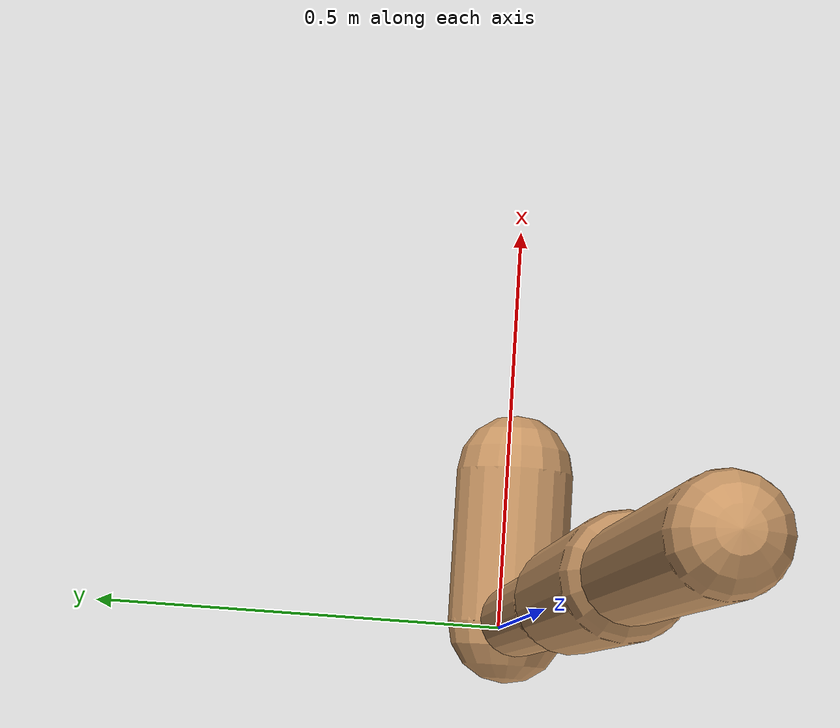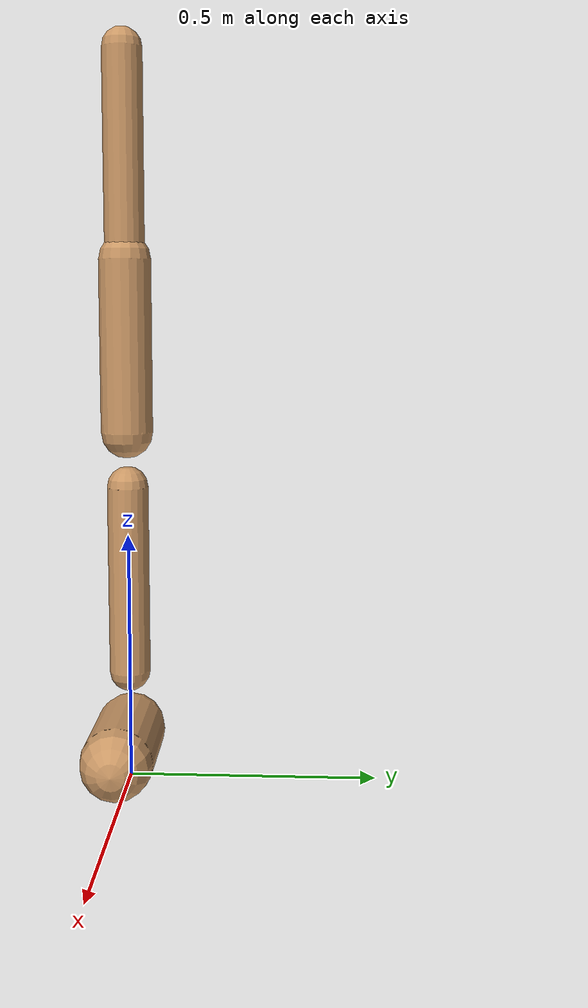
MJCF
<mujoco model="walker2d">
  <compiler angle="degree" coordinate="global" inertiafromgeom="true" />
  <default>
    <joint armature="0.01" damping=".1" limited="true" />
    <geom conaffinity="0" condim="3" contype="1" density="1000" friction="0.8 .1 .1" rgba="0.8 0.6 .4 1" />
  </default>
  <option integrator="RK4" timestep="0.002" />
  <worldbody>

    <body name="torso" pos="0 0 -0.2320140434330135">
      <joint armature="0" axis="1 0 0" damping="0" limited="false" name="ignorex" pos="0 0 0" stiffness="0" type="slide" />
      <joint armature="0" axis="0 0 1" damping="0" limited="false" name="ignorez" pos="0 0 0" ref="1.25" stiffness="0" type="slide" />
      <joint armature="0" axis="0 1 0" damping="0" limited="false" name="ignorey" pos="0 0 0" stiffness="0" type="hinge" />
      <geom fromto="0 0 1.45 0 0 1.05" name="torso_geom" size="0.039527574418913365" type="capsule" />
      <body name="thigh">
        <joint axis="0 -1 0" name="thigh_joint" pos="0 0 1.05" range="-150 0" type="hinge" />
        <geom fromto="0.0 0.0 1.05 0.0 0.0 0.7099013889945853" name="thigh_geom" size="0.05159661738392825" type="capsule" />
        <body name="leg" pos="0.0 0.0 0.10990138899458535">
          <joint axis="0 -1 0" name="leg_joint" pos="0 0 0.6" range="-150 0" type="hinge" />
          <geom fromto="0.0 0.0 0.6 0.0 0.0 0.22211265443842815" name="leg_geom" size="0.0412772939071426" type="capsule" />
          <body name="foot" pos="0.0 0.0 0.12211265443842814">
            <joint axis="0 -1 0" name="foot_joint" pos="0 0 0.1" range="-45 45" type="hinge" />
            <geom fromto="0.0 0.0 0.1 0.18209578204130122 0.0 0.1" name="foot_geom" size="0.06986937771985911" type="capsule" />
          </body>
        </body>
      </body>

      <body name="thigh_left">
        <joint axis="0 -1 0" name="thigh_left_joint" pos="0 0 1.05" range="-150 0" type="hinge" />
        <geom fromto="0.0 0.0 1.05 0.0 0.0 0.7099013889945853" name="thigh_left_geom" rgba=".7 .3 .6 1" size="0.05159661738392825" type="capsule" />
        <body name="leg_left" pos="0.0 0.0 0.10990138899458535">
          <joint axis="0 -1 0" name="leg_left_joint" pos="0 0 0.6" range="-150 0" type="hinge" />
          <geom fromto="0.0 0.0 0.6 0.0 0.0 0.22211265443842815" name="leg_left_geom" rgba=".7 .3 .6 1" size="0.0412772939071426" type="capsule" />
          <body name="foot_left" pos="0.0 0.0 0.12211265443842814">
            <joint axis="0 -1 0" name="foot_left_joint" pos="0 0 0.1" range="-45 45" type="hinge" />
            <geom fromto="0.0 0.0 0.1 0.18209578204130122 0.0 0.1" name="foot_left_geom" rgba=".7 .3 .6 1" size="0.06986937771985911" type="capsule" />
          </body>
        </body>
      </body>
    </body>
  </worldbody>
  <actuator>

    <motor ctrllimited="true" ctrlrange="-1.0 1.0" gear="100" joint="thigh_joint" />
    <motor ctrllimited="true" ctrlrange="-1.0 1.0" gear="100" joint="leg_joint" />
    <motor ctrllimited="true" ctrlrange="-1.0 1.0" gear="100" joint="foot_joint" />
    <motor ctrllimited="true" ctrlrange="-1.0 1.0" gear="100" joint="thigh_left_joint" />
    <motor ctrllimited="true" ctrlrange="-1.0 1.0" gear="100" joint="leg_left_joint" />
    <motor ctrllimited="true" ctrlrange="-1.0 1.0" gear="100" joint="foot_left_joint" />

  </actuator>
</mujoco>
